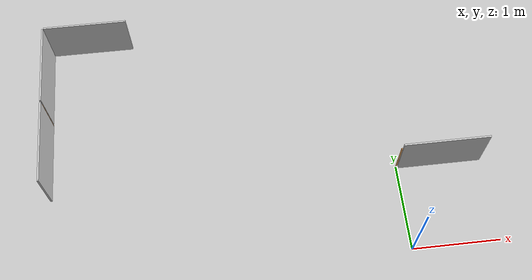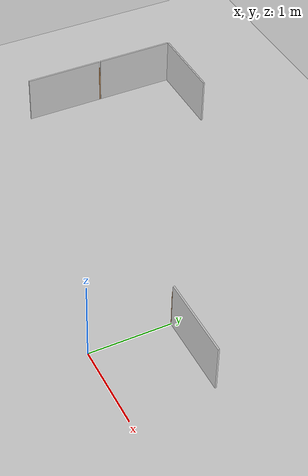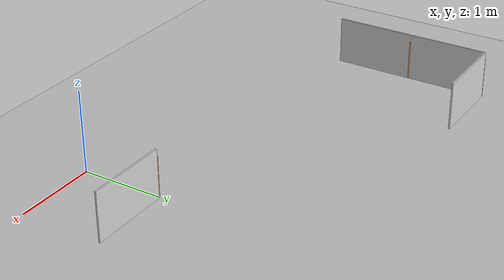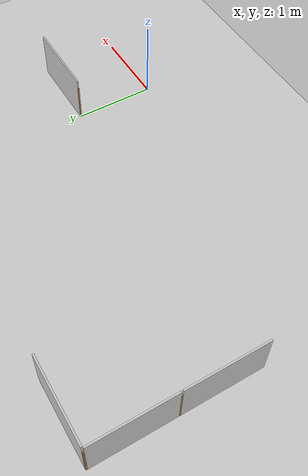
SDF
<sdf version="1.7">
 <world name="default">
  <model name="ground_plane">
   <static>true</static>
   <link name="link">
    <collision name="collision">
     <geometry><plane><normal>0 0 1</normal><size>1 1</size></plane></geometry>
    </collision>
    <visual name="visual">
     <geometry><plane><normal>0 0 1</normal><size>100 100</size></plane></geometry>
     <material>
      <ambient>0.8 0.8 0.8 1</ambient>
      <diffuse>0.8 0.8 0.8 1</diffuse>
      <specular>0.8 0.8 0.8 1</specular>
     </material>
    </visual>
    <inertial>
     <mass>1</mass>
     <inertia><ixx>1</ixx><ixy>0</ixy><ixz>0</ixz><iyy>1</iyy><iyz>0</iyz><izz>1</izz></inertia>
    </inertial>
   </link>
  </model>
  <model name="maze_1_6x5_clone_2_clone_clone_5">
   <frame name="plywood_panel_0_0_b::__model__" attached_to="plywood_panel_0_0_b::main">
    <pose relative_to="__model__">0 0 0 0 -0 1.571</pose>
   </frame>
   <static>true</static>
   <link name="plywood_panel_0_0_b::main">
    <pose relative_to="plywood_panel_0_0_b::__model__">0 0 0 0 -0 0</pose>
    <collision name="collision">
     <pose>0 -0.5 0.3 -1.571 -0 -1.571</pose>
     <geometry><box><size>0.98 0.6 0.02</size></box></geometry>
    </collision>
    <visual name="visual">
     <pose>0.01 -0.01 0 3.14159 -1.57059 3.14159</pose>
     <geometry>
      <mesh>
       <scale>1 1 1</scale>
       <uri>/home/mayank/cognipilot/cranium/src/dream_world/models/plywood_panel/meshes/plywood.dae</uri>
      </mesh>
     </geometry>
    </visual>
   </link>
   <frame name="wooden_joint_0_0_b::__model__" attached_to="wooden_joint_0_0_b::link_0">
    <pose relative_to="__model__">0 0 0 0 -0 0</pose>
   </frame>
   <link name="wooden_joint_0_0_b::link_0">
    <pose relative_to="wooden_joint_0_0_b::__model__">0 0 0.25 0 -0 0</pose>
    <inertial>
     <mass>0.00215981</mass>
     <inertia>
      <ixx>0.00018028</ixx>
      <ixy>0</ixy>
      <ixz>0</ixz>
      <iyy>0.00018028</iyy>
      <iyz>0</iyz>
      <izz>5.8e-07</izz>
     </inertia>
    </inertial>
    <visual name="visual">
     <geometry><cylinder><radius>0.01</radius><length>0.5</length></cylinder></geometry>
     <material>
      <lighting>1</lighting>
      <script><uri>file://media/materials/scripts/gazebo.material</uri><name>Gazebo/Wood</name></script>
      <shader type="pixel"><normal_map>__default__</normal_map></shader>
      <ambient>0.3 0.3 0.3 1</ambient>
      <diffuse>0.7 0.7 0.7 1</diffuse>
      <specular>0.01 0.01 0.01 1</specular>
      <emissive>0 0 0 1</emissive>
     </material>
    </visual>
    <collision name="collision">
     <geometry><cylinder><radius>0.01</radius><length>0.5</length></cylinder></geometry>
     <surface>
      <friction>
       <ode><mu>1</mu><mu2>1</mu2><fdir1>0 0 0</fdir1><slip1>0</slip1><slip2>0</slip2></ode>
       <torsional>
        <coefficient>1</coefficient>
        <patch_radius>0</patch_radius>
        <surface_radius>0</surface_radius>
        <use_patch_radius>1</use_patch_radius>
        <ode><slip>0</slip></ode>
       </torsional>
      </friction>
      <bounce><restitution_coefficient>0</restitution_coefficient><threshold>1e+06</threshold></bounce>
      <contact>
       <collide_without_contact>0</collide_without_contact>
       <collide_without_contact_bitmask>1</collide_without_contact_bitmask>
       <collide_bitmask>1</collide_bitmask>
       <ode>
        <soft_cfm>0</soft_cfm>
        <soft_erp>0.2</soft_erp>
        <kp>1e+13</kp>
        <kd>1</kd>
        <max_vel>0.01</max_vel>
        <min_depth>0</min_depth>
       </ode>
       <bullet>
        <split_impulse>1</split_impulse>
        <split_impulse_penetration_threshold>-0.01</split_impulse_penetration_threshold>
        <soft_cfm>0</soft_cfm>
        <soft_erp>0.2</soft_erp>
        <kp>1e+13</kp>
        <kd>1</kd>
       </bullet>
      </contact>
     </surface>
    </collision>
   </link>
   <static>true</static>
   <pose>0 1 0 0 0 -4e-06</pose>
  </model>
  <model name="maze_1_6x5_clone_clone_6_clone">
   <frame name="plywood_panel_0_0_b::__model__" attached_to="plywood_panel_0_0_b::main">
    <pose relative_to="__model__">0 0 0 0 -0 1.571</pose>
   </frame>
   <static>true</static>
   <link name="plywood_panel_0_0_b::main">
    <pose relative_to="plywood_panel_0_0_b::__model__">0 0 0 0 -0 0</pose>
    <collision name="collision">
     <pose>0 -0.5 0.3 -1.571 -0 -1.571</pose>
     <geometry><box><size>0.98 0.6 0.02</size></box></geometry>
    </collision>
    <visual name="visual">
     <pose>0.01 -0.01 0 3.14159 -1.57059 3.14159</pose>
     <geometry>
      <mesh>
       <scale>1 1 1</scale>
       <uri>/home/mayank/cognipilot/cranium/src/dream_world/models/plywood_panel/meshes/plywood.dae</uri>
      </mesh>
     </geometry>
    </visual>
   </link>
   <frame name="wooden_joint_0_0_b::__model__" attached_to="wooden_joint_0_0_b::link_0">
    <pose relative_to="__model__">0 0 0 0 -0 0</pose>
   </frame>
   <link name="wooden_joint_0_0_b::link_0">
    <pose relative_to="wooden_joint_0_0_b::__model__">0 0 0.25 0 -0 0</pose>
    <inertial>
     <mass>0.00215981</mass>
     <inertia>
      <ixx>0.00018028</ixx>
      <ixy>0</ixy>
      <ixz>0</ixz>
      <iyy>0.00018028</iyy>
      <iyz>0</iyz>
      <izz>5.8e-07</izz>
     </inertia>
    </inertial>
    <visual name="visual">
     <geometry><cylinder><radius>0.01</radius><length>0.5</length></cylinder></geometry>
     <material>
      <lighting>1</lighting>
      <script><uri>file://media/materials/scripts/gazebo.material</uri><name>Gazebo/Wood</name></script>
      <shader type="pixel"><normal_map>__default__</normal_map></shader>
      <ambient>0.3 0.3 0.3 1</ambient>
      <diffuse>0.7 0.7 0.7 1</diffuse>
      <specular>0.01 0.01 0.01 1</specular>
      <emissive>0 0 0 1</emissive>
     </material>
    </visual>
    <collision name="collision">
     <geometry><cylinder><radius>0.01</radius><length>0.5</length></cylinder></geometry>
     <surface>
      <friction>
       <ode><mu>1</mu><mu2>1</mu2><fdir1>0 0 0</fdir1><slip1>0</slip1><slip2>0</slip2></ode>
       <torsional>
        <coefficient>1</coefficient>
        <patch_radius>0</patch_radius>
        <surface_radius>0</surface_radius>
        <use_patch_radius>1</use_patch_radius>
        <ode><slip>0</slip></ode>
       </torsional>
      </friction>
      <bounce><restitution_coefficient>0</restitution_coefficient><threshold>1e+06</threshold></bounce>
      <contact>
       <collide_without_contact>0</collide_without_contact>
       <collide_without_contact_bitmask>1</collide_without_contact_bitmask>
       <collide_bitmask>1</collide_bitmask>
       <ode>
        <soft_cfm>0</soft_cfm>
        <soft_erp>0.2</soft_erp>
        <kp>1e+13</kp>
        <kd>1</kd>
        <max_vel>0.01</max_vel>
        <min_depth>0</min_depth>
       </ode>
       <bullet>
        <split_impulse>1</split_impulse>
        <split_impulse_penetration_threshold>-0.01</split_impulse_penetration_threshold>
        <soft_cfm>0</soft_cfm>
        <soft_erp>0.2</soft_erp>
        <kp>1e+13</kp>
        <kd>1</kd>
       </bullet>
      </contact>
     </surface>
    </collision>
   </link>
   <static>true</static>
   <pose>-4 2 0 0 0 -1.5708</pose>
  </model>
  <model name="maze_1_6x5_clone_clone_6_clone_0">
   <frame name="plywood_panel_0_0_b::__model__" attached_to="plywood_panel_0_0_b::main">
    <pose relative_to="__model__">0 0 0 0 -0 1.571</pose>
   </frame>
   <static>true</static>
   <link name="plywood_panel_0_0_b::main">
    <pose relative_to="plywood_panel_0_0_b::__model__">0 0 0 0 -0 0</pose>
    <collision name="collision">
     <pose>0 -0.5 0.3 -1.571 -0 -1.571</pose>
     <geometry><box><size>0.98 0.6 0.02</size></box></geometry>
    </collision>
    <visual name="visual">
     <pose>0.01 -0.01 0 3.14159 -1.57059 3.14159</pose>
     <geometry>
      <mesh>
       <scale>1 1 1</scale>
       <uri>/home/mayank/cognipilot/cranium/src/dream_world/models/plywood_panel/meshes/plywood.dae</uri>
      </mesh>
     </geometry>
    </visual>
   </link>
   <frame name="wooden_joint_0_0_b::__model__" attached_to="wooden_joint_0_0_b::link_0">
    <pose relative_to="__model__">0 0 0 0 -0 0</pose>
   </frame>
   <link name="wooden_joint_0_0_b::link_0">
    <pose relative_to="wooden_joint_0_0_b::__model__">0 0 0.25 0 -0 0</pose>
    <inertial>
     <mass>0.00215981</mass>
     <inertia>
      <ixx>0.00018028</ixx>
      <ixy>0</ixy>
      <ixz>0</ixz>
      <iyy>0.00018028</iyy>
      <iyz>0</iyz>
      <izz>5.8e-07</izz>
     </inertia>
    </inertial>
    <visual name="visual">
     <geometry><cylinder><radius>0.01</radius><length>0.5</length></cylinder></geometry>
     <material>
      <lighting>1</lighting>
      <script><uri>file://media/materials/scripts/gazebo.material</uri><name>Gazebo/Wood</name></script>
      <shader type="pixel"><normal_map>__default__</normal_map></shader>
      <ambient>0.3 0.3 0.3 1</ambient>
      <diffuse>0.7 0.7 0.7 1</diffuse>
      <specular>0.01 0.01 0.01 1</specular>
      <emissive>0 0 0 1</emissive>
     </material>
    </visual>
    <collision name="collision">
     <geometry><cylinder><radius>0.01</radius><length>0.5</length></cylinder></geometry>
     <surface>
      <friction>
       <ode><mu>1</mu><mu2>1</mu2><fdir1>0 0 0</fdir1><slip1>0</slip1><slip2>0</slip2></ode>
       <torsional>
        <coefficient>1</coefficient>
        <patch_radius>0</patch_radius>
        <surface_radius>0</surface_radius>
        <use_patch_radius>1</use_patch_radius>
        <ode><slip>0</slip></ode>
       </torsional>
      </friction>
      <bounce><restitution_coefficient>0</restitution_coefficient><threshold>1e+06</threshold></bounce>
      <contact>
       <collide_without_contact>0</collide_without_contact>
       <collide_without_contact_bitmask>1</collide_without_contact_bitmask>
       <collide_bitmask>1</collide_bitmask>
       <ode>
        <soft_cfm>0</soft_cfm>
        <soft_erp>0.2</soft_erp>
        <kp>1e+13</kp>
        <kd>1</kd>
        <max_vel>0.01</max_vel>
        <min_depth>0</min_depth>
       </ode>
       <bullet>
        <split_impulse>1</split_impulse>
        <split_impulse_penetration_threshold>-0.01</split_impulse_penetration_threshold>
        <soft_cfm>0</soft_cfm>
        <soft_erp>0.2</soft_erp>
        <kp>1e+13</kp>
        <kd>1</kd>
       </bullet>
      </contact>
     </surface>
    </collision>
   </link>
   <static>true</static>
   <pose>-4 3 0 0 0 -1.5708</pose>
  </model>
  <model name="maze_1_6x5_clone_2_clone_clone_clone_2_clone">
   <frame name="plywood_panel_0_0_b::__model__" attached_to="plywood_panel_0_0_b::main">
    <pose relative_to="__model__">0 0 0 0 -0 1.571</pose>
   </frame>
   <static>true</static>
   <link name="plywood_panel_0_0_b::main">
    <pose relative_to="plywood_panel_0_0_b::__model__">0 0 0 0 -0 0</pose>
    <collision name="collision">
     <pose>0 -0.5 0.3 -1.571 -0 -1.571</pose>
     <geometry><box><size>0.98 0.6 0.02</size></box></geometry>
    </collision>
    <visual name="visual">
     <pose>0.01 -0.01 0 3.14159 -1.57059 3.14159</pose>
     <geometry>
      <mesh>
       <scale>1 1 1</scale>
       <uri>/home/mayank/cognipilot/cranium/src/dream_world/models/plywood_panel/meshes/plywood.dae</uri>
      </mesh>
     </geometry>
    </visual>
   </link>
   <frame name="wooden_joint_0_0_b::__model__" attached_to="wooden_joint_0_0_b::link_0">
    <pose relative_to="__model__">0 0 0 0 -0 0</pose>
   </frame>
   <link name="wooden_joint_0_0_b::link_0">
    <pose relative_to="wooden_joint_0_0_b::__model__">0 0 0.25 0 -0 0</pose>
    <inertial>
     <mass>0.00215981</mass>
     <inertia>
      <ixx>0.00018028</ixx>
      <ixy>0</ixy>
      <ixz>0</ixz>
      <iyy>0.00018028</iyy>
      <iyz>0</iyz>
      <izz>5.8e-07</izz>
     </inertia>
    </inertial>
    <visual name="visual">
     <geometry><cylinder><radius>0.01</radius><length>0.5</length></cylinder></geometry>
     <material>
      <lighting>1</lighting>
      <script><uri>file://media/materials/scripts/gazebo.material</uri><name>Gazebo/Wood</name></script>
      <shader type="pixel"><normal_map>__default__</normal_map></shader>
      <ambient>0.3 0.3 0.3 1</ambient>
      <diffuse>0.7 0.7 0.7 1</diffuse>
      <specular>0.01 0.01 0.01 1</specular>
      <emissive>0 0 0 1</emissive>
     </material>
    </visual>
    <collision name="collision">
     <geometry><cylinder><radius>0.01</radius><length>0.5</length></cylinder></geometry>
     <surface>
      <friction>
       <ode><mu>1</mu><mu2>1</mu2><fdir1>0 0 0</fdir1><slip1>0</slip1><slip2>0</slip2></ode>
       <torsional>
        <coefficient>1</coefficient>
        <patch_radius>0</patch_radius>
        <surface_radius>0</surface_radius>
        <use_patch_radius>1</use_patch_radius>
        <ode><slip>0</slip></ode>
       </torsional>
      </friction>
      <bounce><restitution_coefficient>0</restitution_coefficient><threshold>1e+06</threshold></bounce>
      <contact>
       <collide_without_contact>0</collide_without_contact>
       <collide_without_contact_bitmask>1</collide_without_contact_bitmask>
       <collide_bitmask>1</collide_bitmask>
       <ode>
        <soft_cfm>0</soft_cfm>
        <soft_erp>0.2</soft_erp>
        <kp>1e+13</kp>
        <kd>1</kd>
        <max_vel>0.01</max_vel>
        <min_depth>0</min_depth>
       </ode>
       <bullet>
        <split_impulse>1</split_impulse>
        <split_impulse_penetration_threshold>-0.01</split_impulse_penetration_threshold>
        <soft_cfm>0</soft_cfm>
        <soft_erp>0.2</soft_erp>
        <kp>1e+13</kp>
        <kd>1</kd>
       </bullet>
      </contact>
     </surface>
    </collision>
   </link>
   <static>true</static>
   <pose>-4 3 0 0 0 -4e-06</pose>
  </model>
 </world>
</sdf>
